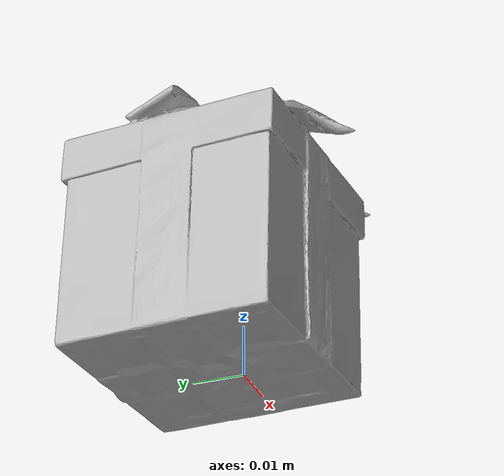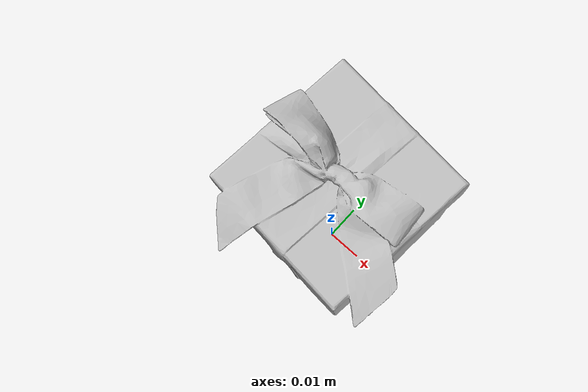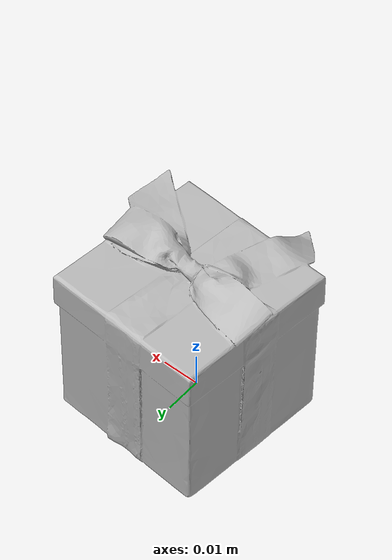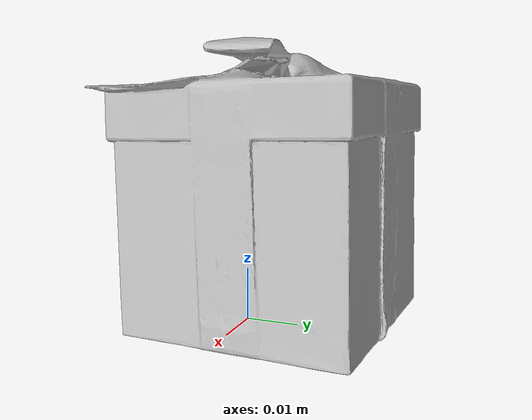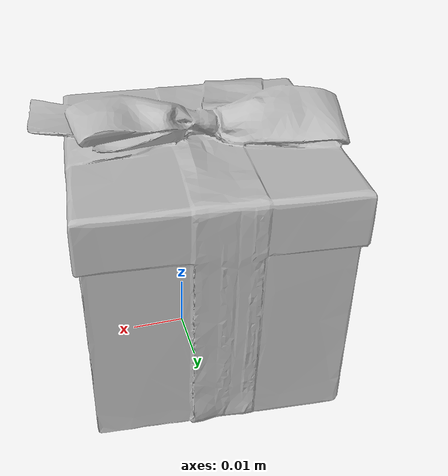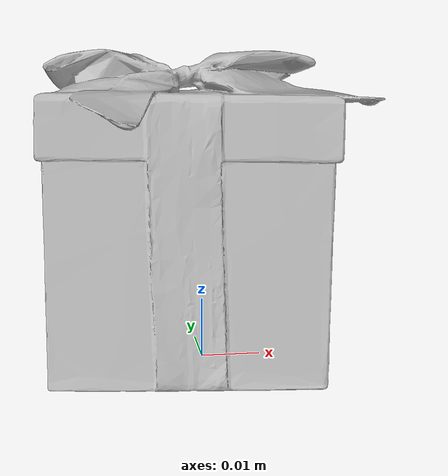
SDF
<?xml version="1.0" ?>
<sdf version="1.6">
<model name="pepsi2">
  <link name="link_0">

    <inertial>
      <mass>0.35</mass>
      <inertia>
        <ixx>0.000810</ixx>
        <iyy>0.000810</iyy>
        <izz>0.000306</izz>
        <ixy>0</ixy>
        <ixz>0</ixz>
        <iyz>0</iyz>
      </inertia>
    </inertial>

    <!-- VISUAL -->
    <visual name="visual">
      <geometry>
        <mesh>
          <uri>meshes/model.obj</uri>
          <scale>0.3 0.3 0.3</scale>
        </mesh>
      </geometry>
    </visual>

    <!-- COLLISION — simple box approximating the can -->
    <collision name="collision_0">
      <geometry>
        <box>
          <size>0.068 0.068 0.12</size>
        </box>
      </geometry>
      <surface>
        <friction>
          <ode>
            <mu>1.2</mu>
            <mu2>1.2</mu2>
            <fdir1>1 0 0</fdir1>
            <slip1>0.0</slip1>
            <slip2>0.0</slip2>
          </ode>
        </friction>
        <contact>
          <kp>100000</kp>
          <kd>10</kd>
        </contact>
      </surface>
    </collision>

  </link>
</model>
</sdf>
